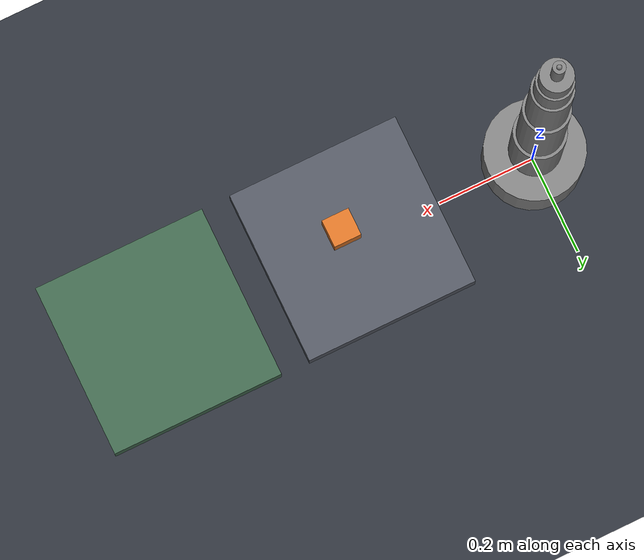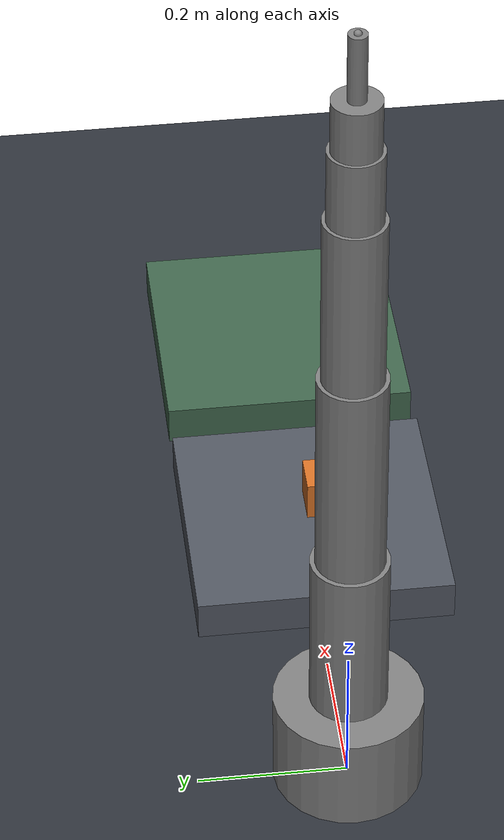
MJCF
<mujoco model="benchmark-world">
  <compiler angle="radian"/>

  <option tolerance="1e-10" integrator="implicitfast" jacobian="dense"/>

  <visual>
    <headlight ambient="0 0 0" diffuse="0 0 0" specular="0 0 0"/>
  </visual>

  <statistic extent="7.08" center="0 0 0"/>

  <default>
    <default class="robot/main"/>
  </default>

  <worldbody>
    <geom name="world/floor" size="7.08 7.08 0.1" type="plane" rgba="0.18 0.2 0.23 1"/>
    <camera name="world/camera" pos="4.248 -5.9 4.248" quat="0.803956 0.50933 0.164287 0.259321" fovy="50"/>
    <light name="world/key" pos="0 -2.36 7.08" dir="0 0 -1" type="directional" ambient="0.3 0.3 0.3" diffuse="0.8 0.8 0.8" specular="0.1 0.1 0.1"/>
    <body name="world/bench" pos="0.3894 0 0.08968">
      <geom name="world/bench_geom" size="0.177 0.177 0.02832" type="box" condim="4" priority="1" friction="1 0.03 0.001" solref="0.004" solimp="0.95 0.99" rgba="0.32 0.34 0.38 1"/>
    </body>
    <body name="world/cube" pos="0.402329 -0.0217321 0.14632">
      <joint name="world/cube_free" type="free"/>
      <geom name="world/cube_geom" size="0.02832 0.02832 0.02832" type="box" condim="4" priority="1" friction="1.57543 0.03 0.001" solref="0.004" solimp="0.95 0.99" mass="0.190841" rgba="0.85 0.45 0.15 1"/>
    </body>
    <body name="world/destination" pos="0.8024 0 0.08968">
      <geom name="world/destination_geom" size="0.177 0.177 0.02832" type="box" condim="4" priority="1" friction="1 0.03 0.001" solref="0.004" solimp="0.95 0.99" rgba="0.25 0.4 0.3 1"/>
    </body>
    <body name="robot/base">
      <inertial pos="0 0 0.07" quat="0.5 0.5 -0.5 0.5" mass="6" diaginertia="0.03 0.0248 0.0248"/>
      <geom size="0.1 0.07" pos="0 0 0.07" type="cylinder"/>
      <site name="robot/robot_base" pos="0 0 0"/>
      <body name="robot/link_0" pos="0 0 0.14">
        <inertial pos="0 0 0.12" mass="1.83489" diaginertia="0.0100479 0.0100479 0.00248077"/>
        <joint name="robot/joint_0" pos="0 0 0" axis="0 0 1" range="-2.85 2.85" actuatorfrcrange="-140 140"/>
        <geom size="0.052 0.12" pos="0 0 0.12" type="cylinder"/>
        <body name="robot/link_1" pos="0 0 0.24">
          <inertial pos="0 0 0.15" mass="1.77618" diaginertia="0.0142511 0.0142511 0.00185963"/>
          <joint name="robot/joint_1" pos="0 0 0" axis="0 1 0" range="-2.85 2.85" actuatorfrcrange="-140 140"/>
          <geom size="0.04576 0.15" pos="0 0 0.15" type="cylinder"/>
          <body name="robot/link_2" pos="0 0 0.3">
            <inertial pos="0 0 0.12" mass="1.10038" diaginertia="0.00572789 0.00572789 0.00089217"/>
            <joint name="robot/joint_2" pos="0 0 0" axis="0 1 0" range="-2.85 2.85" actuatorfrcrange="-140 140"/>
            <geom size="0.040269 0.12" pos="0 0 0.12" type="cylinder"/>
            <body name="robot/link_3" pos="0 0 0.24">
              <inertial pos="0 0 0.05" mass="0.355055" diaginertia="0.00040734 0.00040734 0.00022293"/>
              <joint name="robot/joint_3" pos="0 0 0" axis="0 0 1" range="-2.85 2.85" actuatorfrcrange="-140 140"/>
              <geom size="0.035437 0.05" pos="0 0 0.05" type="cylinder"/>
              <body name="robot/link_4" pos="0 0 0.1">
                <inertial pos="0 0 0.035" mass="0.25" diaginertia="0.00016286 0.00016286 0.00012156"/>
                <joint name="robot/joint_4" pos="0 0 0" axis="0 1 0" range="-2.85 2.85" actuatorfrcrange="-140 140"/>
                <geom size="0.031184 0.035" pos="0 0 0.035" type="cylinder"/>
                <site name="robot/link_4_wrist" pos="0 0 0"/>
                <body name="robot/tool" pos="0 0 0.07">
                  <inertial pos="0 0 0.045" mass="0.18" diaginertia="0.00012798 0.00012798 1.296e-05"/>
                  <geom size="0.012 0.045" pos="0 0 0.045" type="cylinder"/>
                  <site name="robot/link_4_tip" pos="0 0 0.09"/>
                </body>
              </body>
            </body>
          </body>
        </body>
      </body>
    </body>
  </worldbody>

  <actuator>
    <general name="robot/joint_0_motor" joint="robot/joint_0" ctrllimited="true" ctrlrange="-140 140" forcelimited="true" forcerange="-140 140"/>
    <general name="robot/joint_1_motor" joint="robot/joint_1" ctrllimited="true" ctrlrange="-140 140" forcelimited="true" forcerange="-140 140"/>
    <general name="robot/joint_2_motor" joint="robot/joint_2" ctrllimited="true" ctrlrange="-140 140" forcelimited="true" forcerange="-140 140"/>
    <general name="robot/joint_3_motor" joint="robot/joint_3" ctrllimited="true" ctrlrange="-140 140" forcelimited="true" forcerange="-140 140"/>
    <general name="robot/joint_4_motor" joint="robot/joint_4" ctrllimited="true" ctrlrange="-140 140" forcelimited="true" forcerange="-140 140"/>
  </actuator>
</mujoco>
